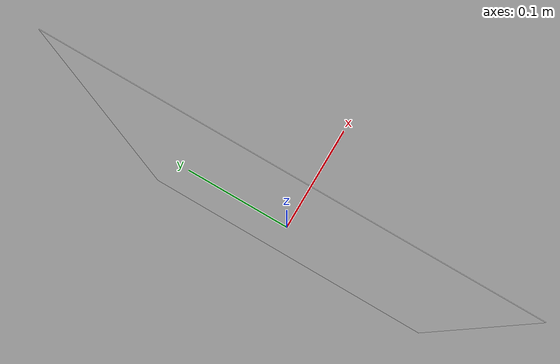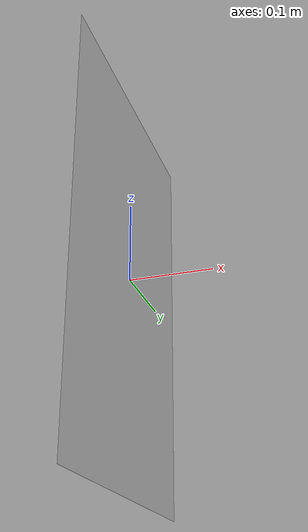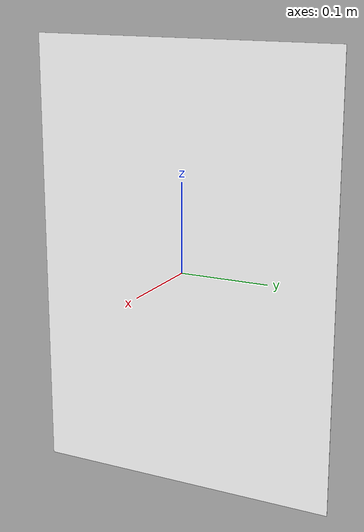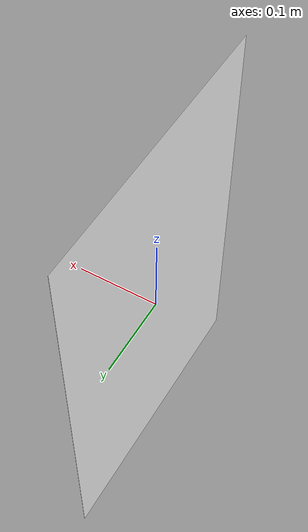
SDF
<?xml version="1.0"?>
<sdf version="1.8">
  <model name="poster_1">
    <static>true</static>
    <link name="link">
      <visual name="visual">
        <geometry><plane><normal>1 0 0</normal><size>0.5 0.35</size></plane></geometry>
        <material>
          <ambient>1 1 1 1</ambient><diffuse>1 1 1 1</diffuse><specular>0 0 0 1</specular>
          <pbr><metal>
            <albedo_map>model://poster_1/materials/textures/poster_1.png</albedo_map>
            <roughness>1.0</roughness><metalness>0.0</metalness>
          </metal></pbr>
        </material>
      </visual>
    </link>
  </model>
</sdf>
